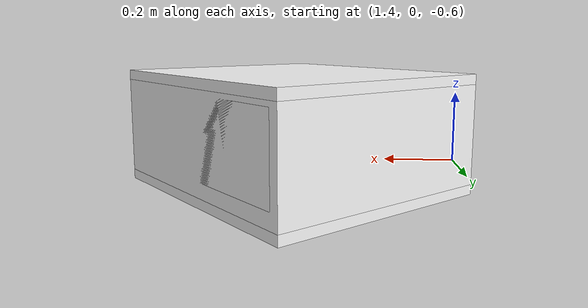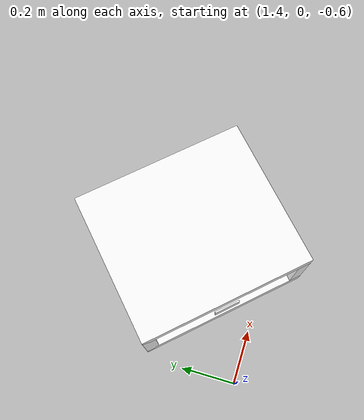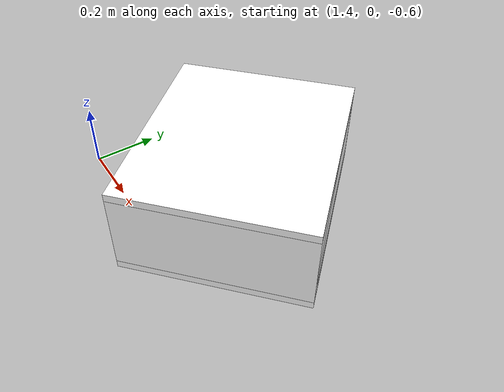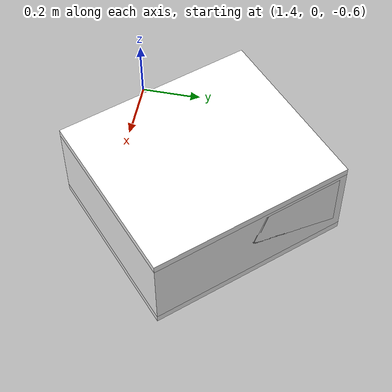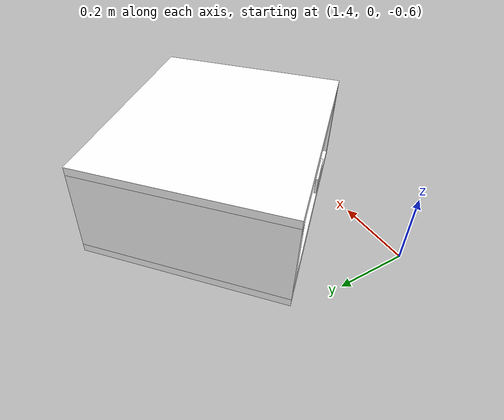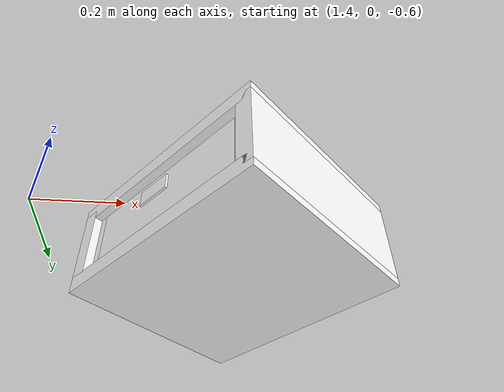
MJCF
<mujoco model="drawer">
        <compiler angle="radian" eulerseq='zxy' />
        <option gravity = "0 0 0" />
        <option>
            <flag contact = "disable"/>
        </option>
        <statistic	extent="1.0" center="0.0 0.0 0.0"/>
        <visual>
            <map fogstart="3" fogend="5" force="0.1" znear=" 0.100000 " zfar=" 12.000000 "/>
        </visual>
        <size njmax="500" nconmax="100" />
        <actuator>
            <velocity joint="drawerJ" name="viva_revolution" kv='10'></velocity>
        </actuator>
        <asset>
            <texture builtin="flat" name="objtex" height="32" width="32" rgb1="1 1 1" type="cube"></texture>
            <texture builtin="flat" name="handletex" height="32" width="32" rgb1="1 1 1" type="cube"></texture>
            <material name="geomObj" shininess="0.03" specular="0.75" texture="objtex"></material>
            <material name="geomHandle" shininess="0.03" specular="0.75" texture="handletex"></material>
        </asset>
        <worldbody>
            <body name="cabinet_bottom" pos= " 1.848072 0.293563 -0.584646 "  quat= " -0.363169 0.000000 0.000000 0.931723" >
                <inertial pos="0 0 0" mass="1" diaginertia="1 1 1" />
                <geom size= " 0.282902 0.322282 0.023882 "  type="box" material="geomObj" name="b"/>
                <body name="cabinet_left" pos= " 0.000000 -0.298401 0.118817 " >
                    <inertial pos="0 0 0" mass="1" diaginertia="1 1 1" />
                    <geom size= " 0.282902 0.023882 0.118817 "  type="box" material="geomObj" name="c" />
                </body>
                <body name="cabinet_right" pos= " 0.000000 0.298401 0.118817 " >
                    <inertial pos="0 0 0" mass="1" diaginertia="1 1 1" />
                    <geom size= " 0.282902 0.023882 0.118817 "  type="box" material="geomObj" name="d" />
                </body>
                <body name="cabinet_top" pos= " 0.000000 0.000000 0.237634 " >
                    <inertial pos="0 0 0" mass="1" diaginertia="1 1 1" />
                    <geom size= " 0.282902 0.322282 0.023882 "  type="box" material="geomObj" name="e"/>
                </body>
                <body name="cabinet_back" pos= " -0.259021 0.000000 0.118817 "  >
                    <inertial pos="0 0 0" mass="1" diaginertia="1 1 1" />
                    <geom size= " 0.023882 0.322282 0.118817 "  type="box" material="geomObj" name="f" />
                </body>
                <body name="drawer" pos= " 0.000000 0.000000 0.011941 "  >
                    <geom size= " 0.259021 0.298401 0.023882 "  type="box" material="geomObj" name="ddddfadfadsfac" />
                    <joint name="drawerJ" pos="0 0 0" axis="1 0 0" type="slide" limited="true" range= "0  0.42435362935066223 "  />
                    <inertial pos="0 0 0" mass="1" diaginertia="1 1 1" />
                    <body name="drawer_left" pos= " 0.000000 -0.274519 0.118817 " >
                        <inertial pos="0 0 0" mass="1" diaginertia="1 1 1" />
                        <geom size= " 0.259021 0.023882 0.094935 "  type="box" material="geomObj" name="ddc" />
                    </body>
                    <body name="drawer_right" pos= " 0.000000 0.274519 0.118817 " >
                        <inertial pos="0 0 0" mass="1" diaginertia="1 1 1" />
                        <geom size= " 0.259021 0.023882 0.094935 "  type="box" material="geomObj" name="dddd" />
                    </body>
                    <body name="drawer_front" pos= " 0.235139 0.000000 0.118817 " >
                        <inertial pos="0 0 0" mass="1" diaginertia="1 1 1" />
                        <geom size= " 0.023882 0.298401 0.094935 "  type="box" material="geomObj" name="eeeee"/>
                    </body>
                    <body name="drawer_back" pos= " -0.259021 0.000000 0.118817 "  >
                        <inertial pos="0 0 0" mass="1" diaginertia="1 1 1" />
                        <geom size= " 0.023882 0.298401 0.094935 "  type="box" material="geomObj" name="fffff" />
                    </body>
                    <body name="knob" pos= " 0.282902 0.000000 0.118817 " >
                        <inertial pos="0 0 0" mass="0.1" diaginertia="0.1 0.1 0.1" />
                        <geom size= " 0.002988 0.047869 0.022957 "  pos="0 0 0" type="box" material="geomHandle" name="handle"/>
                    </body>
                </body>
            </body>
            <body name="external_camera_body_0" pos="0.0 0 0.00">
                <camera euler="-1.57 1.57 0.0" fovy=" 54.280851 " name="external_camera_0" pos="0.0 0 0"></camera>
                <inertial pos= " 0.00 0.0 0.000000 " mass="1" diaginertia="1 1 1" />
                <joint name="cam_j" pos="0.0 0 0" axis = "1 0 0" type="free" />
            </body>
        </worldbody>
    </mujoco>
